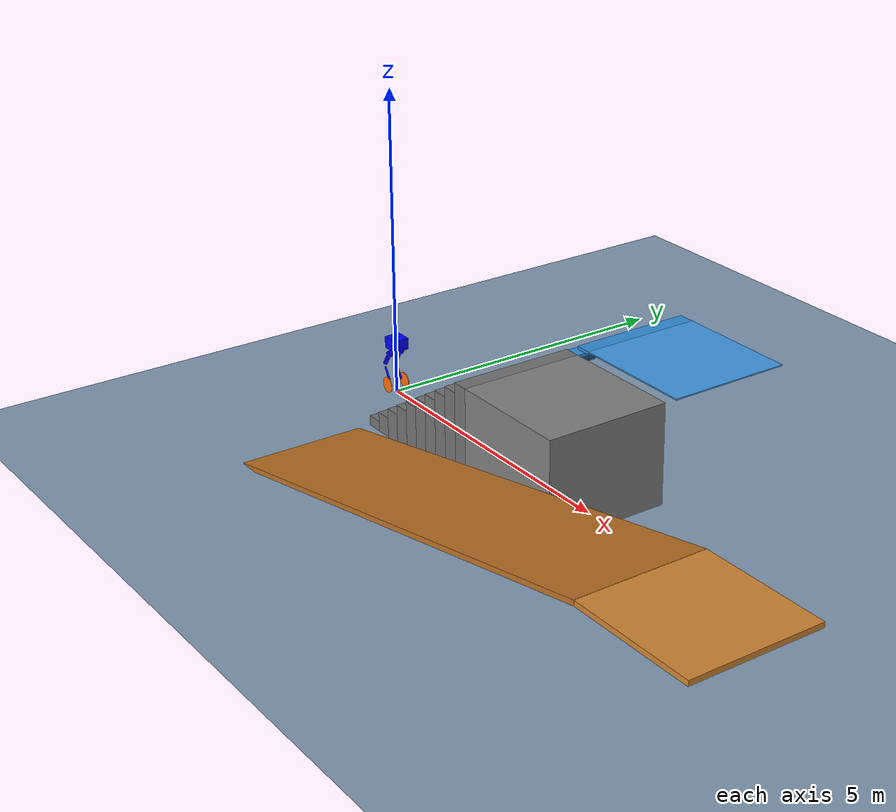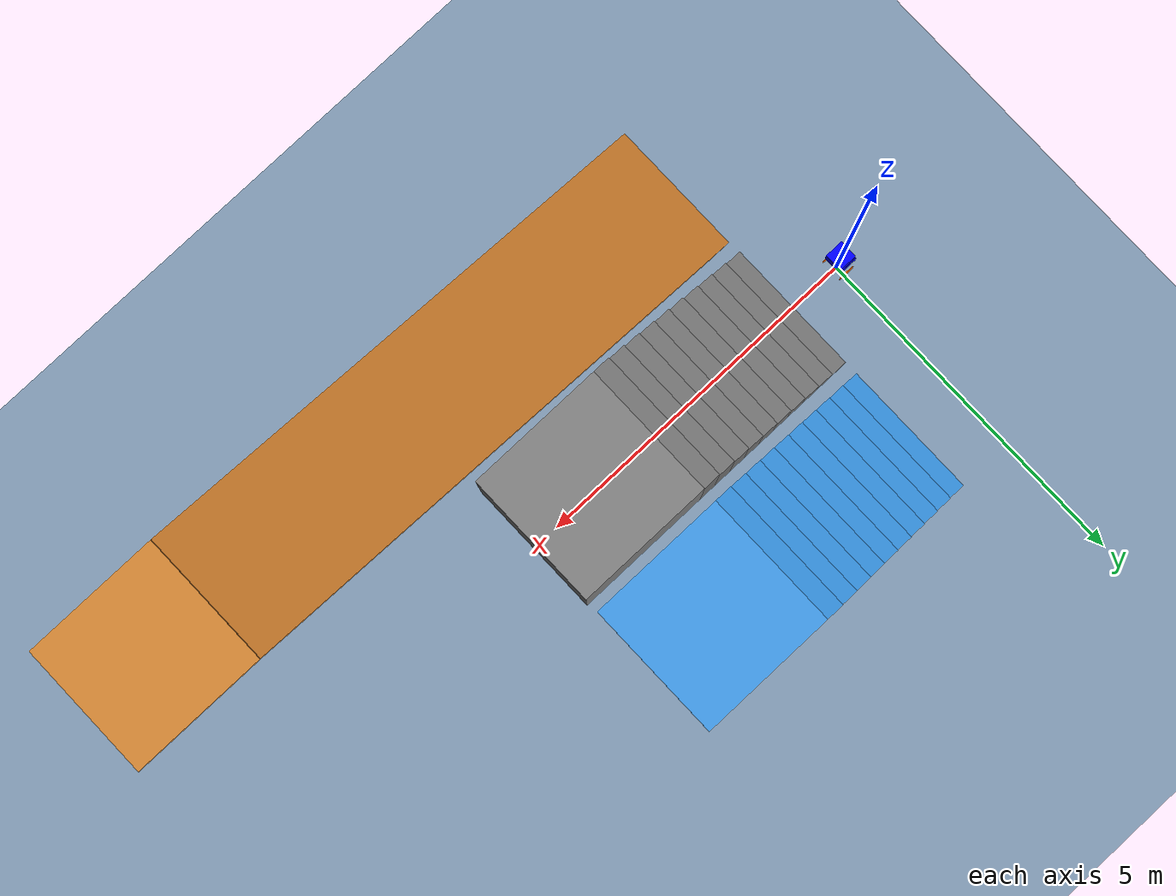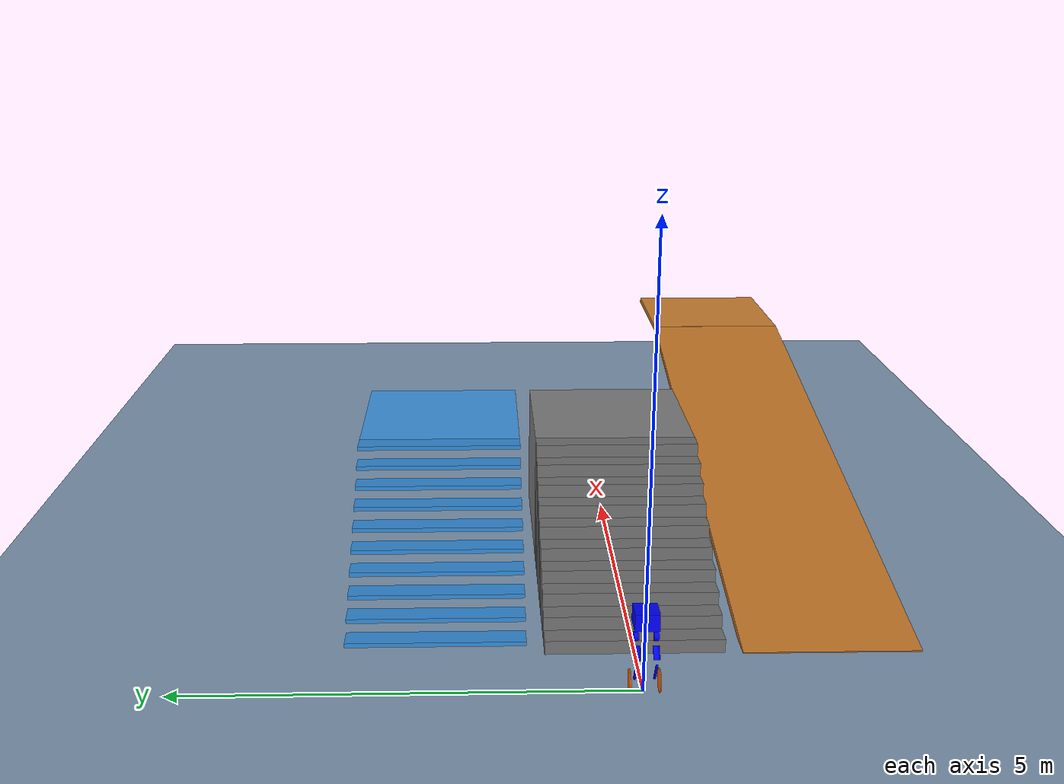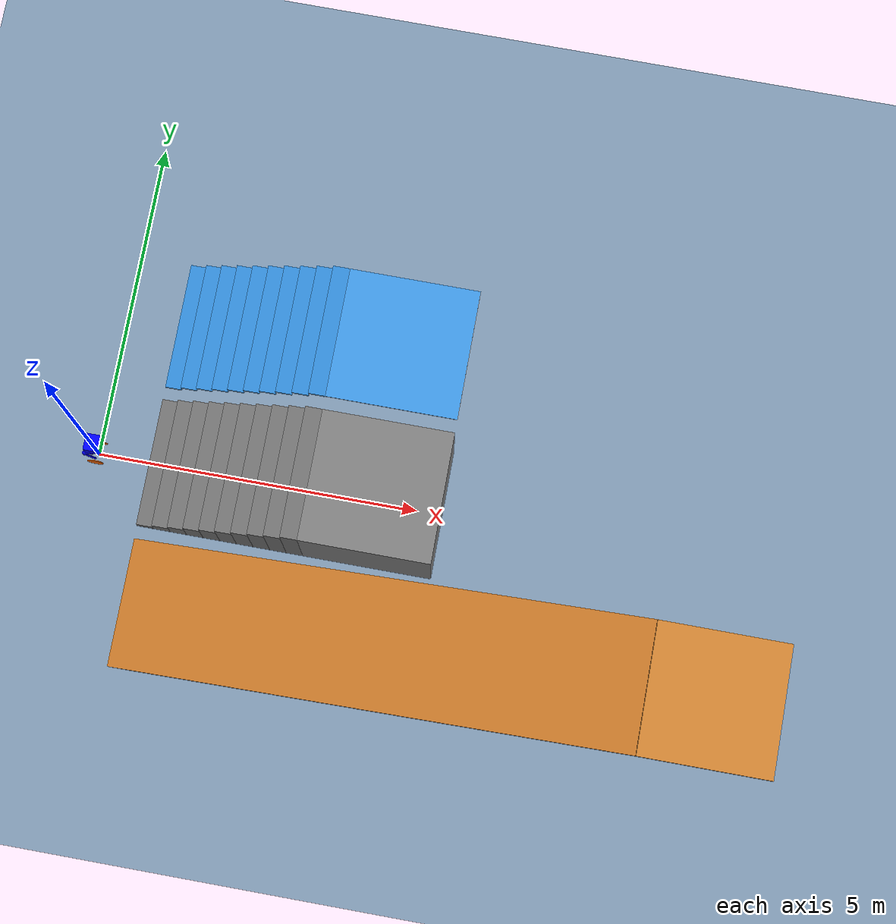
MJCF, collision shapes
<mujoco model="wheel_biped">
    <compiler angle="radian" meshdir="../meshes/" />
    <size njmax="500" nconmax="100" />

    <default>
        <light castshadow="false" diffuse="1 1 1" />
        <camera fovy="60"/>
        <default class="visual">
            <geom contype="0" conaffinity="0" group="1" type="mesh" rgba="0.9 0.9 0.9 1.0"/>
        </default>
        <joint armature="0.01" damping="0.01"/>
        <geom contype="1" conaffinity="1" condim="3" friction="0.6 0.005 0.0001" rgba="0.5 0.6 0.7 0.0" margin="0.001" group="0" />
    </default>
    <visual>
        <rgba com="0.502 1.0 0 0.5" contactpoint="1.0 1.0 0.6 0.4" contactforce="0.2 0.98 0.2 0.8"/>
        <scale com="0.2" forcewidth="0.05" contactwidth="0.10" contactheight="0.04"/>
    </visual>

    <asset>
        <mesh name="base_Link" file="base_Link.STL" />
        <mesh name="abad_L_Link" file="abad_L_Link.STL" />
        <mesh name="hip_L_Link" file="hip_L_Link.STL" />
        <mesh name="knee_L_Link" file="knee_L_Link.STL" />
        <mesh name="wheel_L_Link" file="wheel_L_Link.STL" />
        <mesh name="abad_R_Link" file="abad_R_Link.STL" />
        <mesh name="hip_R_Link" file="hip_R_Link.STL" />
        <mesh name="knee_R_Link" file="knee_R_Link.STL" />
        <mesh name="wheel_R_Link" file="wheel_R_Link.STL" />
    </asset>

    <asset>
        <texture type='skybox' builtin='gradient' width='512' height='512' rgb1="1.0 1.0 1.0" rgb2="1.0 1.0 1.0"/>
        <texture name="texplane" type="2d" builtin="checker" rgb1="0.35 0.35 0.35" rgb2="0.55 0.55 0.55" width="512" height="512" mark="cross" markrgb=".8 .8 .8"/>
        <material name="matplane" reflectance="0.0" texture="texplane" texrepeat="1 1" texuniform="true"/>
    </asset>
        <option timestep="0.001"/>

    <worldbody>
        <geom name="floor" rgba="0.5 0.6 0.7 1" pos="0 0 0" size="0 0 0.25" type="plane" material="matplane" condim="3"/>
        <camera name="track" mode="trackcom" pos="0 -2.3 1.6" xyaxes="1 0 0 0 0.707 0.707"/>
        <light directional="true" diffuse=".8 .8 .8" pos="0 0 10" dir="0 0 -10"/>

        <body name="base_Link" pos="0 0 0.92">
            <inertial pos="0.0457123 0.000139854 -0.163809" quat="0.972578 -0.00615364 -0.232461 0.00398682" mass="9.595" diaginertia="0.154712 0.11093 0.0846371" />
            <joint type="free" limited="false" damping="0.0000" stiffness="0.0000" armature="0"/>
            <site name="imu" pos="0 0 0"/>
            <geom class="visual" rgba="0.79216 0.81961 0.93333 1" mesh="base_Link" />
            <geom name="base_collision" size="0.135 0.13 0.095" pos="0.03 0 -0.072" type="box" rgba="0 0 1 0" />

            <body name="abad_L_Link" pos="0.05556 0.105 -0.2602">
                <inertial pos="-0.06977 0.04479 0.00057" quat="0.595024 0.579772 0.394141 0.393019" mass="1.469" diaginertia="0.00252289 0.00208104 0.00139163" />
                <joint name="abad_L_Joint" pos="0 0 0" axis="1 0 0" limited="true" range="-0.38397 1.39626" />
                <geom class="visual" rgba="0.79216 0.81961 0.93333 1" mesh="abad_L_Link" />
                <geom name="abad_L_collision" type="cylinder" pos="-0.08 0 0" euler="1.57 0 0" size="0.05 0.025" rgba="0 0 1 0" />

                <body name="hip_L_Link" pos="-0.077 0.0205 0">
                    <inertial pos="-0.02869 -0.0477 -0.03992" quat="0.853885 0.192797 0.226903 0.426877" mass="2.3" diaginertia="0.0233264 0.0230229 0.00277548" />
                    <joint name="hip_L_Joint" pos="0 0 0" axis="0 1 0" limited="true" range="-1.01229 1.39626" />
                    <geom class="visual" rgba="1 1 1 1" mesh="hip_L_Link" />
                    <geom name="hip_L_collision" type="cylinder" pos="-0.1 -0.025 -0.14" euler="0 0.53 0" size="0.035 0.075" rgba="0 0 1 0" />

                    <body name="knee_L_Link" pos="-0.15 -0.0205 -0.25981">
                        <inertial pos="0.11913 0.01106 -0.20363" quat="0.687012 -0.159981 -0.201582 0.679548" mass="1.49" diaginertia="0.0177107 0.0171855 0.001015" />
                        <joint name="knee_L_Joint" pos="0 0 0" axis="0 -1 0" limited="true" range="-0.872665 1.36136" />
                        <geom class="visual" rgba="0.79216 0.81961 0.93333 1" mesh="knee_L_Link" />
                        <geom name="knee_L_collision" type="cylinder" pos="0.078 0 -0.12" euler="0 -0.55 0" size="0.015 0.13" rgba ="0 0 1 0"/>

                        <body name="wheel_L_Link" pos="0.15 0.0435 -0.25981">
                            <inertial pos="3e-05 0.00807 -2e-05" quat="0.683013 0.183016 0.183017 0.683011" mass="1.08" diaginertia="0.00974272 0.00515568 0.00515344" />
                            <joint name="wheel_L_Joint" pos="0 0 0" axis="0 1 0" limited="true" range="-1000000 1000000" frictionloss="0.01" />
                            <geom class="visual" rgba="0.26667 0.26667 0.26667 1" mesh="wheel_L_Link" />
                            <geom name="wheel_L_collision" pos="0.0 0.008 0.0" size="0.127 0.005" quat="0.707107 0.707107 0 0" type="cylinder" rgba="1 0.423529 0.0392157 1" />
                        </body>
                    </body>
                </body>
            </body>
            <body name="abad_R_Link" pos="0.05556 -0.105 -0.2602">
                <inertial pos="-0.06977 -0.04479 0.00057" quat="0.393019 0.394141 0.579772 0.595024" mass="1.469" diaginertia="0.00252289 0.00208104 0.00139163" />
                <joint name="abad_R_Joint" pos="0 0 0" axis="1 0 0" limited="true" range="-1.39626 0.38397" />
                <geom class="visual" rgba="0.79216 0.81961 0.93333 1" mesh="abad_R_Link" />
                <geom name="abad_R_collision" type="cylinder" pos="-0.08 0 0" euler="1.57 0 0" size="0.05 0.025" rgba="0 0 1 0" />

                <body name="hip_R_Link" pos="-0.077 -0.0205 0">
                    <inertial pos="-0.02869 0.0477 -0.03992" quat="0.426877 0.226903 0.192797 0.853885" mass="2.3" diaginertia="0.0233264 0.0230229 0.00277548" />
                    <joint name="hip_R_Joint" pos="0 0 0" axis="0 -1 0" limited="true" range="-1.39626 1.01229" />
                    <geom class="visual" rgba="1 1 1 1" mesh="hip_R_Link" />
                    <geom name="hip_R_collision" type="cylinder" pos="-0.10 0.025 -0.14" euler="0 0.53 0" size="0.035 0.075" rgba="0 0 1 0" />

                    <body name="knee_R_Link" pos="-0.15 0.0205 -0.25981">
                        <inertial pos="0.11913 -0.01106 -0.20363" quat="0.679548 -0.201582 -0.159981 0.687012" mass="1.49" diaginertia="0.0177107 0.0171855 0.001015" />
                        <joint name="knee_R_Joint" pos="0 0 0" axis="0 1 0" limited="true" range="-1.36136 0.872665" />
                        <geom class="visual" rgba="0.79216 0.81961 0.93333 1" mesh="knee_R_Link" />
                        <geom name="knee_R_collision" type="cylinder" pos="0.078 0 -0.12" euler="0 -0.55 0" size="0.015 0.13" rgba ="0 0 1 0"/>

                        <body name="wheel_R_Link" pos="0.15 -0.0435 -0.25981">
                            <inertial pos="3e-05 -0.00807 -2e-05" quat="0.683011 0.183017 0.183016 0.683013" mass="1.08" diaginertia="0.00974272 0.00515568 0.00515344" />
                            <joint name="wheel_R_Joint" pos="0 0 0" axis="0 1 0" limited="true" range="-1000000 1000000" frictionloss="0.01" />
                            <geom class="visual" rgba="0.26667 0.26667 0.26667 1" mesh="wheel_R_Link" />
                            <geom name="wheel_R_collision" pos="0.0 -0.008 0.0" size="0.127 0.005" quat="0.707107 0.707107 0 0" type="cylinder" rgba="1 0.423529 0.0392157 1" />
                        </body>
                    </body>
                </body>
            </body>
        </body>

        <!-- Auto-added solid stairs, open stairs and ramp -->
        <geom name="stair_step_01" type="box" pos="0.930000 0.000000 0.080000" size="0.130000 1.000000 0.080000" rgba="0.45 0.45 0.45 1" contype="1" conaffinity="1" friction="1.0 0.005 0.0001"/>
        <geom name="stair_step_02" type="box" pos="1.190000 0.000000 0.160000" size="0.130000 1.000000 0.160000" rgba="0.45 0.45 0.45 1" contype="1" conaffinity="1" friction="1.0 0.005 0.0001"/>
        <geom name="stair_step_03" type="box" pos="1.450000 0.000000 0.240000" size="0.130000 1.000000 0.240000" rgba="0.45 0.45 0.45 1" contype="1" conaffinity="1" friction="1.0 0.005 0.0001"/>
        <geom name="stair_step_04" type="box" pos="1.710000 0.000000 0.320000" size="0.130000 1.000000 0.320000" rgba="0.45 0.45 0.45 1" contype="1" conaffinity="1" friction="1.0 0.005 0.0001"/>
        <geom name="stair_step_05" type="box" pos="1.970000 0.000000 0.400000" size="0.130000 1.000000 0.400000" rgba="0.45 0.45 0.45 1" contype="1" conaffinity="1" friction="1.0 0.005 0.0001"/>
        <geom name="stair_step_06" type="box" pos="2.230000 0.000000 0.480000" size="0.130000 1.000000 0.480000" rgba="0.45 0.45 0.45 1" contype="1" conaffinity="1" friction="1.0 0.005 0.0001"/>
        <geom name="stair_step_07" type="box" pos="2.490000 0.000000 0.560000" size="0.130000 1.000000 0.560000" rgba="0.45 0.45 0.45 1" contype="1" conaffinity="1" friction="1.0 0.005 0.0001"/>
        <geom name="stair_step_08" type="box" pos="2.750000 0.000000 0.640000" size="0.130000 1.000000 0.640000" rgba="0.45 0.45 0.45 1" contype="1" conaffinity="1" friction="1.0 0.005 0.0001"/>
        <geom name="stair_step_09" type="box" pos="3.010000 0.000000 0.720000" size="0.130000 1.000000 0.720000" rgba="0.45 0.45 0.45 1" contype="1" conaffinity="1" friction="1.0 0.005 0.0001"/>
        <geom name="stair_step_10" type="box" pos="3.270000 0.000000 0.800000" size="0.130000 1.000000 0.800000" rgba="0.45 0.45 0.45 1" contype="1" conaffinity="1" friction="1.0 0.005 0.0001"/>
        <geom name="stair_platform" type="box" pos="4.400000 0.000000 0.800000" size="1.000000 1.000000 0.800000" rgba="0.50 0.50 0.50 1" contype="1" conaffinity="1" friction="1.0 0.005 0.0001"/>
        <geom name="open_stair_step_01" type="box" pos="0.930000 2.200000 0.135000" size="0.130000 1.000000 0.025000" rgba="0.20 0.55 0.85 1" contype="1" conaffinity="1" friction="1.0 0.005 0.0001"/>
        <geom name="open_stair_step_02" type="box" pos="1.190000 2.200000 0.295000" size="0.130000 1.000000 0.025000" rgba="0.20 0.55 0.85 1" contype="1" conaffinity="1" friction="1.0 0.005 0.0001"/>
        <geom name="open_stair_step_03" type="box" pos="1.450000 2.200000 0.455000" size="0.130000 1.000000 0.025000" rgba="0.20 0.55 0.85 1" contype="1" conaffinity="1" friction="1.0 0.005 0.0001"/>
        <geom name="open_stair_step_04" type="box" pos="1.710000 2.200000 0.615000" size="0.130000 1.000000 0.025000" rgba="0.20 0.55 0.85 1" contype="1" conaffinity="1" friction="1.0 0.005 0.0001"/>
        <geom name="open_stair_step_05" type="box" pos="1.970000 2.200000 0.775000" size="0.130000 1.000000 0.025000" rgba="0.20 0.55 0.85 1" contype="1" conaffinity="1" friction="1.0 0.005 0.0001"/>
        <geom name="open_stair_step_06" type="box" pos="2.230000 2.200000 0.935000" size="0.130000 1.000000 0.025000" rgba="0.20 0.55 0.85 1" contype="1" conaffinity="1" friction="1.0 0.005 0.0001"/>
        <geom name="open_stair_step_07" type="box" pos="2.490000 2.200000 1.095000" size="0.130000 1.000000 0.025000" rgba="0.20 0.55 0.85 1" contype="1" conaffinity="1" friction="1.0 0.005 0.0001"/>
        <geom name="open_stair_step_08" type="box" pos="2.750000 2.200000 1.255000" size="0.130000 1.000000 0.025000" rgba="0.20 0.55 0.85 1" contype="1" conaffinity="1" friction="1.0 0.005 0.0001"/>
        <geom name="open_stair_step_09" type="box" pos="3.010000 2.200000 1.415000" size="0.130000 1.000000 0.025000" rgba="0.20 0.55 0.85 1" contype="1" conaffinity="1" friction="1.0 0.005 0.0001"/>
        <geom name="open_stair_step_10" type="box" pos="3.270000 2.200000 1.575000" size="0.130000 1.000000 0.025000" rgba="0.20 0.55 0.85 1" contype="1" conaffinity="1" friction="1.0 0.005 0.0001"/>
        <geom name="open_stair_platform" type="box" pos="4.400000 2.200000 1.590000" size="1.000000 1.000000 0.010000" rgba="0.25 0.60 0.90 1" contype="1" conaffinity="1" friction="1.0 0.005 0.0001"/>
        <geom name="training_ramp" type="box" pos="4.800000 -2.200000 0.760777" quat="0.995133327 0 -0.098537618 0" size="4.079216 1.000000 0.040000" rgba="0.75 0.45 0.15 1" contype="1" conaffinity="1" friction="1.0 0.005 0.0001"/>
        <geom name="ramp_platform" type="box" pos="9.800000 -2.200000 1.560000" size="1.000000 1.000000 0.040000" rgba="0.82 0.52 0.20 1" contype="1" conaffinity="1" friction="1.0 0.005 0.0001"/>

</worldbody>

    <actuator>
        <motor name="abad_L_Joint"   gear="1"  joint="abad_L_Joint"  ctrllimited='true' ctrlrange='-80 80'/>
        <motor name="hip_L_Joint"    gear="1"  joint="hip_L_Joint"   ctrllimited='true' ctrlrange='-80 80'/>
        <motor name="knee_L_Joint"   gear="1"  joint="knee_L_Joint"  ctrllimited='true' ctrlrange='-80 80'/>
        <motor name="wheel_L_Joint"  gear="1"  joint="wheel_L_Joint" ctrllimited='true' ctrlrange='-40 40'/>
        <motor name="abad_R_Joint"   gear="1"  joint="abad_R_Joint"  ctrllimited='true' ctrlrange='-80 80' />
        <motor name="hip_R_Joint"    gear="1"  joint="hip_R_Joint"   ctrllimited='true' ctrlrange='-80 80' />
        <motor name="knee_R_Joint"   gear="1"  joint="knee_R_Joint"  ctrllimited='true' ctrlrange='-80 80'/>
        <motor name="wheel_R_Joint"  gear="1"  joint="wheel_R_Joint" ctrllimited='true' ctrlrange='-40 40'/>
    </actuator>

    <sensor>
        <framequat name="quat" objtype="site" objname="imu"/>
        <gyro name="gyro" site="imu"/>
        <accelerometer name="acc" site="imu"/>
        <jointpos name="abad_L_Joint"    joint="abad_L_Joint" />
        <jointpos name="hip_L_Joint"     joint="hip_L_Joint" />
        <jointpos name="knee_L_Joint"    joint="knee_L_Joint" />
        <jointpos name="wheel_L_Joint"   joint="wheel_L_Joint" />
        <jointpos name="abad_R_Joint"    joint="abad_R_Joint" />
        <jointpos name="hip_R_Joint"     joint="hip_R_Joint" />
        <jointpos name="knee_R_Joint"    joint="knee_R_Joint" />
        <jointpos name="wheel_R_Joint"   joint="wheel_R_Joint" />
    </sensor>

</mujoco>
